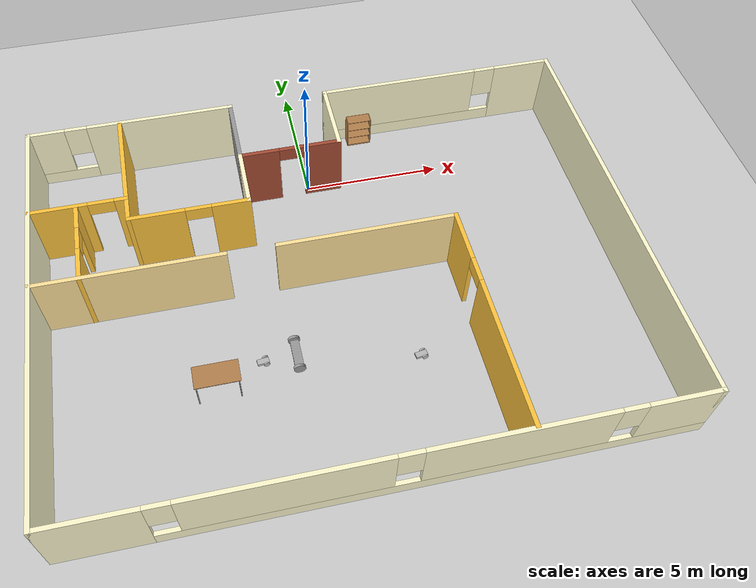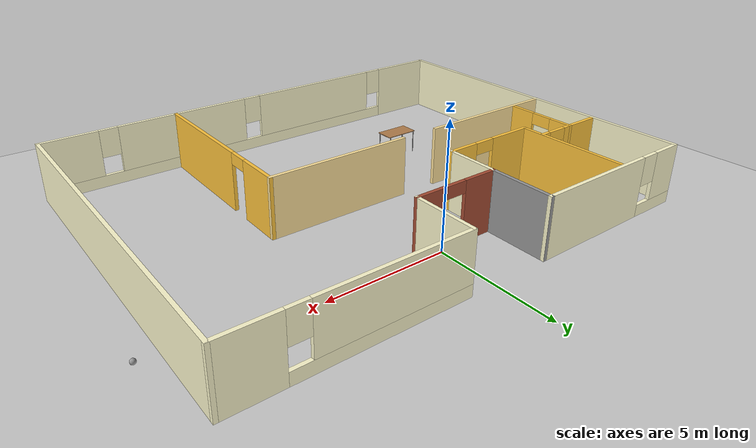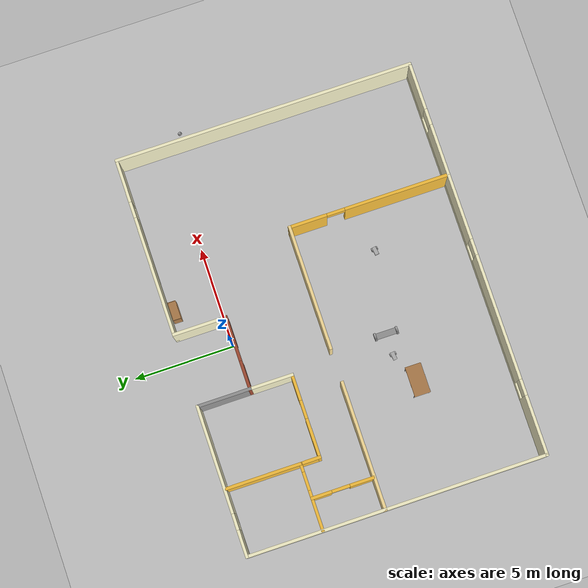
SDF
<sdf version="1.6">
 <world name="default">
  <light name="sun" type="directional">
   <pose>0 0 10 0 -0 0</pose>
   <diffuse>0.8 0.8 0.8 1</diffuse>
   <specular>0.2 0.2 0.2 1</specular>
   <attenuation>
    <range>1000</range>
    <constant>0.9</constant>
    <linear>0.01</linear>
    <quadratic>0.001</quadratic>
   </attenuation>
   <direction>-0.5 0.1 -0.9</direction>
  </light>
  <model name="ground_plane">
   <static>1</static>
   <link name="link">
    <collision name="collision">
     <geometry><plane><normal>0 0 1</normal><size>100 100</size></plane></geometry>
     <surface><friction><ode><mu>100</mu><mu2>50</mu2></ode></friction></surface>
    </collision>
    <visual name="visual">
     <cast_shadows>0</cast_shadows>
     <geometry><plane><normal>0 0 1</normal><size>100 100</size></plane></geometry>
     <material>
      <script><uri>file://media/materials/scripts/gazebo.material</uri><name>Gazebo/Grey</name></script>
     </material>
    </visual>
   </link>
  </model>
  <gravity>0 0 -9.8</gravity>
  <magnetic_field>6e-06 2.3e-05 -4.2e-05</magnetic_field>
  <atmosphere type="adiabatic"/>
  <physics name="default_physics" default="0" type="ode">
   <max_step_size>0.001</max_step_size>
   <real_time_factor>1</real_time_factor>
   <real_time_update_rate>1000</real_time_update_rate>
  </physics>
  <scene><ambient>0.4 0.4 0.4 1</ambient><background>0.7 0.7 0.7 1</background><shadows>1</shadows></scene>
  <spherical_coordinates>
   <surface_model>EARTH_WGS84</surface_model>
   <latitude_deg>0</latitude_deg>
   <longitude_deg>0</longitude_deg>
   <elevation>0</elevation>
   <heading_deg>0</heading_deg>
  </spherical_coordinates>
  <model name="myHouse">
   <pose>0.08313 -4.95881 0 0 -0 0</pose>
   <link name="Wall_10">
    <pose>-6.22482 7.425 0 0 -0 3.14159</pose>
    <visual name="Wall_10_Visual_0">
     <pose>-1.08871 0 1.25 0 -0 0</pose>
     <geometry><box><size>5.37259 0.15 2.5</size></box></geometry>
     <material>
      <script><uri>file://media/materials/scripts/gazebo.material</uri><name>Gazebo/Grey</name></script>
      <ambient>1 0.980392 0.811765 1</ambient>
     </material>
     <meta><layer>0</layer></meta>
    </visual>
    <collision name="Wall_10_Collision_0">
     <geometry><box><size>5.37259 0.15 2.5</size></box></geometry>
     <pose>-1.08871 0 1.25 0 -0 0</pose>
    </collision>
    <visual name="Wall_10_Visual_1">
     <pose>2.68629 0 0.25 0 -0 0</pose>
     <geometry><box><size>2.17741 0.15 0.5</size></box></geometry>
     <material>
      <script><uri>file://media/materials/scripts/gazebo.material</uri><name>Gazebo/Grey</name></script>
      <ambient>1 0.980392 0.811765 1</ambient>
     </material>
     <meta><layer>0</layer></meta>
    </visual>
    <collision name="Wall_10_Collision_1">
     <geometry><box><size>2.17741 0.15 0.5</size></box></geometry>
     <pose>2.68629 0 0.25 0 -0 0</pose>
    </collision>
    <visual name="Wall_10_Visual_2">
     <pose>3.08629 0 1.5 0 -0 0</pose>
     <geometry><box><size>1.37741 0.15 2</size></box></geometry>
     <material>
      <script><uri>file://media/materials/scripts/gazebo.material</uri><name>Gazebo/Grey</name></script>
      <ambient>1 0.980392 0.811765 1</ambient>
     </material>
     <meta><layer>0</layer></meta>
    </visual>
    <collision name="Wall_10_Collision_2">
     <geometry><box><size>1.37741 0.15 2</size></box></geometry>
     <pose>3.08629 0 1.5 0 -0 0</pose>
    </collision>
    <visual name="Wall_10_Visual_3">
     <pose>1.99759 0 1.9 0 -0 0</pose>
     <geometry><box><size>0.8 0.15 1.2</size></box></geometry>
     <material>
      <script><uri>file://media/materials/scripts/gazebo.material</uri><name>Gazebo/Grey</name></script>
      <ambient>1 0.980392 0.811765 1</ambient>
     </material>
     <meta><layer>0</layer></meta>
    </visual>
    <collision name="Wall_10_Collision_3">
     <geometry><box><size>0.8 0.15 1.2</size></box></geometry>
     <pose>1.99759 0 1.9 0 -0 0</pose>
    </collision>
   </link>
   <link name="Wall_12">
    <collision name="Wall_12_Collision">
     <geometry><box><size>2.25 0.15 2.5</size></box></geometry>
     <pose>0 0 1.25 0 -0 0</pose>
    </collision>
    <visual name="Wall_12_Visual">
     <pose>0 0 1.25 0 -0 0</pose>
     <geometry><box><size>2.25 0.15 2.5</size></box></geometry>
     <material>
      <script><uri>file://media/materials/scripts/gazebo.material</uri><name>Gazebo/Grey</name></script>
      <ambient>1 0.980392 0.811765 1</ambient>
     </material>
     <meta><layer>0</layer></meta>
    </visual>
    <pose>-2.52482 3.775 0 0 0 -1.5708</pose>
   </link>
   <link name="Wall_13">
    <pose>-4.57482 2.725 0 0 -0 3.14159</pose>
    <visual name="Wall_13_Visual_0">
     <pose>-1.44542 0 1.25 0 -0 0</pose>
     <geometry><box><size>1.35916 0.15 2.5</size></box></geometry>
     <material>
      <script><uri>file://media/materials/scripts/gazebo.material</uri><name>Gazebo/Grey</name></script>
      <ambient>1 0.772549 0.239216 1</ambient>
     </material>
     <meta><layer>0</layer></meta>
    </visual>
    <collision name="Wall_13_Collision_0">
     <geometry><box><size>1.35916 0.15 2.5</size></box></geometry>
     <pose>-1.44542 0 1.25 0 -0 0</pose>
    </collision>
    <visual name="Wall_13_Visual_1">
     <pose>1.12958 0 1.25 0 -0 0</pose>
     <geometry><box><size>1.99084 0.15 2.5</size></box></geometry>
     <material>
      <script><uri>file://media/materials/scripts/gazebo.material</uri><name>Gazebo/Grey</name></script>
      <ambient>1 0.772549 0.239216 1</ambient>
     </material>
     <meta><layer>0</layer></meta>
    </visual>
    <collision name="Wall_13_Collision_1">
     <geometry><box><size>1.99084 0.15 2.5</size></box></geometry>
     <pose>1.12958 0 1.25 0 -0 0</pose>
    </collision>
    <visual name="Wall_13_Visual_2">
     <pose>-0.315843 0 2.25 0 -0 0</pose>
     <geometry><box><size>0.9 0.15 0.5</size></box></geometry>
     <material>
      <script><uri>file://media/materials/scripts/gazebo.material</uri><name>Gazebo/Grey</name></script>
      <ambient>1 0.772549 0.239216 1</ambient>
     </material>
     <meta><layer>0</layer></meta>
    </visual>
    <collision name="Wall_13_Collision_2">
     <geometry><box><size>0.9 0.15 0.5</size></box></geometry>
     <pose>-0.315843 0 2.25 0 -0 0</pose>
    </collision>
   </link>
   <link name="Wall_14">
    <collision name="Wall_14_Collision">
     <geometry><box><size>4.75 0.15 2.5</size></box></geometry>
     <pose>0 0 1.25 0 -0 0</pose>
    </collision>
    <visual name="Wall_14_Visual">
     <pose>0 0 1.25 0 -0 0</pose>
     <geometry><box><size>4.75 0.15 2.5</size></box></geometry>
     <material>
      <script><uri>file://media/materials/scripts/gazebo.material</uri><name>Gazebo/Grey</name></script>
      <ambient>1 0.772549 0.239216 1</ambient>
     </material>
     <meta><layer>0</layer></meta>
    </visual>
    <pose>-6.62481 5.025 0 0 -0 1.5708</pose>
   </link>
   <link name="Wall_16">
    <pose>-8.26166 3.67479 0 0 -0 0</pose>
    <visual name="Wall_16_Visual_0">
     <pose>-0.692622 0 1.25 0 -0 0</pose>
     <geometry><box><size>2.03776 0.15 2.5</size></box></geometry>
     <material>
      <script><uri>file://media/materials/scripts/gazebo.material</uri><name>Gazebo/Grey</name></script>
      <ambient>1 0.772549 0.239216 1</ambient>
     </material>
     <meta><layer>0</layer></meta>
    </visual>
    <collision name="Wall_16_Collision_0">
     <geometry><box><size>2.03776 0.15 2.5</size></box></geometry>
     <pose>-0.692622 0 1.25 0 -0 0</pose>
    </collision>
    <visual name="Wall_16_Visual_1">
     <pose>1.46888 0 1.25 0 -0 0</pose>
     <geometry><box><size>0.485244 0.15 2.5</size></box></geometry>
     <material>
      <script><uri>file://media/materials/scripts/gazebo.material</uri><name>Gazebo/Grey</name></script>
      <ambient>1 0.772549 0.239216 1</ambient>
     </material>
     <meta><layer>0</layer></meta>
    </visual>
    <collision name="Wall_16_Collision_1">
     <geometry><box><size>0.485244 0.15 2.5</size></box></geometry>
     <pose>1.46888 0 1.25 0 -0 0</pose>
    </collision>
    <visual name="Wall_16_Visual_2">
     <pose>0.776256 0 2.25 0 -0 0</pose>
     <geometry><box><size>0.9 0.15 0.5</size></box></geometry>
     <material>
      <script><uri>file://media/materials/scripts/gazebo.material</uri><name>Gazebo/Grey</name></script>
      <ambient>1 0.772549 0.239216 1</ambient>
     </material>
     <meta><layer>0</layer></meta>
    </visual>
    <collision name="Wall_16_Collision_2">
     <geometry><box><size>0.9 0.15 0.5</size></box></geometry>
     <pose>0.776256 0 2.25 0 -0 0</pose>
    </collision>
   </link>
   <link name="Wall_21">
    <pose>4.20181 -3.38793 0 0 0 -1.5708</pose>
    <visual name="Wall_21_Visual_0">
     <pose>-3.08247 0 1.25 0 -0 0</pose>
     <geometry><box><size>1.94451 0.15 2.5</size></box></geometry>
     <material>
      <script><uri>file://media/materials/scripts/gazebo.material</uri><name>Gazebo/Grey</name></script>
      <ambient>1 0.772549 0.239216 1</ambient>
     </material>
     <meta><layer>0</layer></meta>
    </visual>
    <collision name="Wall_21_Collision_0">
     <geometry><box><size>1.94451 0.15 2.5</size></box></geometry>
     <pose>-3.08247 0 1.25 0 -0 0</pose>
    </collision>
    <visual name="Wall_21_Visual_1">
     <pose>1.42226 0 1.25 0 -0 0</pose>
     <geometry><box><size>5.26493 0.15 2.5</size></box></geometry>
     <material>
      <script><uri>file://media/materials/scripts/gazebo.material</uri><name>Gazebo/Grey</name></script>
      <ambient>1 0.772549 0.239216 1</ambient>
     </material>
     <meta><layer>0</layer></meta>
    </visual>
    <collision name="Wall_21_Collision_1">
     <geometry><box><size>5.26493 0.15 2.5</size></box></geometry>
     <pose>1.42226 0 1.25 0 -0 0</pose>
    </collision>
    <visual name="Wall_21_Visual_2">
     <pose>-1.66021 0 2.25 0 -0 0</pose>
     <geometry><box><size>0.9 0.15 0.5</size></box></geometry>
     <material>
      <script><uri>file://media/materials/scripts/gazebo.material</uri><name>Gazebo/Grey</name></script>
      <ambient>1 0.772549 0.239216 1</ambient>
     </material>
     <meta><layer>0</layer></meta>
    </visual>
    <collision name="Wall_21_Collision_2">
     <geometry><box><size>0.9 0.15 0.5</size></box></geometry>
     <pose>-1.66021 0 2.25 0 -0 0</pose>
    </collision>
   </link>
   <link name="Wall_23">
    <pose>-8.33016 2.13129 0 0 0 -1.5708</pose>
    <visual name="Wall_23_Visual_0">
     <pose>-1.09422 0 1.25 0 -0 0</pose>
     <geometry><box><size>1.0487 0.15 2.5</size></box></geometry>
     <material>
      <script><uri>file://media/materials/scripts/gazebo.material</uri><name>Gazebo/Grey</name></script>
      <ambient>1 0.772549 0.239216 1</ambient>
     </material>
     <meta><layer>0</layer></meta>
    </visual>
    <collision name="Wall_23_Collision_0">
     <geometry><box><size>1.0487 0.15 2.5</size></box></geometry>
     <pose>-1.09422 0 1.25 0 -0 0</pose>
    </collision>
    <visual name="Wall_23_Visual_1">
     <pose>0.974348 0 1.25 0 -0 0</pose>
     <geometry><box><size>1.28844 0.15 2.5</size></box></geometry>
     <material>
      <script><uri>file://media/materials/scripts/gazebo.material</uri><name>Gazebo/Grey</name></script>
      <ambient>1 0.772549 0.239216 1</ambient>
     </material>
     <meta><layer>0</layer></meta>
    </visual>
    <collision name="Wall_23_Collision_1">
     <geometry><box><size>1.28844 0.15 2.5</size></box></geometry>
     <pose>0.974348 0 1.25 0 -0 0</pose>
    </collision>
    <visual name="Wall_23_Visual_2">
     <pose>-0.119873 0 2.25 0 -0 0</pose>
     <geometry><box><size>0.9 0.15 0.5</size></box></geometry>
     <material>
      <script><uri>file://media/materials/scripts/gazebo.material</uri><name>Gazebo/Grey</name></script>
      <ambient>1 0.772549 0.239216 1</ambient>
     </material>
     <meta><layer>0</layer></meta>
    </visual>
    <collision name="Wall_23_Collision_2">
     <geometry><box><size>0.9 0.15 0.5</size></box></geometry>
     <pose>-0.119873 0 2.25 0 -0 0</pose>
    </collision>
   </link>
   <link name="Wall_25">
    <collision name="Wall_25_Collision">
     <geometry><box><size>6.43405 0.15 2.5</size></box></geometry>
     <pose>0 0 1.25 0 -0 0</pose>
    </collision>
    <visual name="Wall_25_Visual">
     <pose>0 0 1.25 0 -0 0</pose>
     <geometry><box><size>6.43405 0.15 2.5</size></box></geometry>
     <material>
      <script><uri>file://media/materials/scripts/gazebo.material</uri><name>Gazebo/Grey</name></script>
      <ambient>1 0.890196 0.607843 1</ambient>
     </material>
     <meta><layer>0</layer></meta>
    </visual>
    <pose>-6.78316 0.591794 0 0 -0 0</pose>
   </link>
   <link name="Wall_27">
    <collision name="Wall_27_Collision">
     <geometry><box><size>6.25 0.15 2.5</size></box></geometry>
     <pose>0 0 1.25 0 -0 0</pose>
    </collision>
    <visual name="Wall_27_Visual">
     <pose>0 0 1.25 0 -0 0</pose>
     <geometry><box><size>6.25 0.15 2.5</size></box></geometry>
     <material>
      <script><uri>file://media/materials/scripts/gazebo.material</uri><name>Gazebo/Grey</name></script>
      <ambient>1 0.890196 0.607843 1</ambient>
     </material>
     <meta><layer>0</layer></meta>
    </visual>
    <pose>1.15184 0.591794 0 0 -0 3.14159</pose>
   </link>
   <link name="Wall_3">
    <collision name="Wall_3_Collision">
     <geometry><box><size>15 0.15 2.5</size></box></geometry>
     <pose>0 0 1.25 0 -0 0</pose>
    </collision>
    <visual name="Wall_3_Visual">
     <pose>0 0 1.25 0 -0 0</pose>
     <geometry><box><size>15 0.15 2.5</size></box></geometry>
     <material>
      <script><uri>file://media/materials/scripts/gazebo.material</uri><name>Gazebo/Grey</name></script>
      <ambient>1 0.980392 0.811765 1</ambient>
     </material>
     <meta><layer>0</layer></meta>
    </visual>
    <pose>-9.92482 0 0 0 0 -1.5708</pose>
   </link>
   <link name="Wall_4">
    <pose>0.000185 -7.425 0 0 -0 0</pose>
    <visual name="Wall_4_Visual_0">
     <pose>-8.48669 0 1.25 0 -0 0</pose>
     <geometry><box><size>3.02663 0.15 2.5</size></box></geometry>
     <material>
      <script><uri>file://media/materials/scripts/gazebo.material</uri><name>Gazebo/Grey</name></script>
      <ambient>1 0.980392 0.811765 1</ambient>
     </material>
     <meta><layer>0</layer></meta>
    </visual>
    <collision name="Wall_4_Collision_0">
     <geometry><box><size>3.02663 0.15 2.5</size></box></geometry>
     <pose>-8.48669 0 1.25 0 -0 0</pose>
    </collision>
    <visual name="Wall_4_Visual_1">
     <pose>1.51331 0 0.25 0 -0 0</pose>
     <geometry><box><size>16.9734 0.15 0.5</size></box></geometry>
     <material>
      <script><uri>file://media/materials/scripts/gazebo.material</uri><name>Gazebo/Grey</name></script>
      <ambient>1 0.980392 0.811765 1</ambient>
     </material>
     <meta><layer>0</layer></meta>
    </visual>
    <collision name="Wall_4_Collision_1">
     <geometry><box><size>16.9734 0.15 0.5</size></box></geometry>
     <pose>1.51331 0 0.25 0 -0 0</pose>
    </collision>
    <visual name="Wall_4_Visual_2">
     <pose>-3.03555 0 1.5 0 -0 0</pose>
     <geometry><box><size>6.27565 0.15 2</size></box></geometry>
     <material>
      <script><uri>file://media/materials/scripts/gazebo.material</uri><name>Gazebo/Grey</name></script>
      <ambient>1 0.980392 0.811765 1</ambient>
     </material>
     <meta><layer>0</layer></meta>
    </visual>
    <collision name="Wall_4_Collision_2">
     <geometry><box><size>6.27565 0.15 2</size></box></geometry>
     <pose>-3.03555 0 1.5 0 -0 0</pose>
    </collision>
    <visual name="Wall_4_Visual_3">
     <pose>3.8406 0 1.5 0 -0 0</pose>
     <geometry><box><size>5.87665 0.15 2</size></box></geometry>
     <material>
      <script><uri>file://media/materials/scripts/gazebo.material</uri><name>Gazebo/Grey</name></script>
      <ambient>1 0.980392 0.811765 1</ambient>
     </material>
     <meta><layer>0</layer></meta>
    </visual>
    <collision name="Wall_4_Collision_3">
     <geometry><box><size>5.87665 0.15 2</size></box></geometry>
     <pose>3.8406 0 1.5 0 -0 0</pose>
    </collision>
    <visual name="Wall_4_Visual_4">
     <pose>8.78946 0 1.5 0 -0 0</pose>
     <geometry><box><size>2.42107 0.15 2</size></box></geometry>
     <material>
      <script><uri>file://media/materials/scripts/gazebo.material</uri><name>Gazebo/Grey</name></script>
      <ambient>1 0.980392 0.811765 1</ambient>
     </material>
     <meta><layer>0</layer></meta>
    </visual>
    <collision name="Wall_4_Collision_4">
     <geometry><box><size>2.42107 0.15 2</size></box></geometry>
     <pose>8.78946 0 1.5 0 -0 0</pose>
    </collision>
    <visual name="Wall_4_Visual_5">
     <pose>-6.57338 0 1.9 0 -0 0</pose>
     <geometry><box><size>0.8 0.15 1.2</size></box></geometry>
     <material>
      <script><uri>file://media/materials/scripts/gazebo.material</uri><name>Gazebo/Grey</name></script>
      <ambient>1 0.980392 0.811765 1</ambient>
     </material>
     <meta><layer>0</layer></meta>
    </visual>
    <collision name="Wall_4_Collision_5">
     <geometry><box><size>0.8 0.15 1.2</size></box></geometry>
     <pose>-6.57338 0 1.9 0 -0 0</pose>
    </collision>
    <visual name="Wall_4_Visual_6">
     <pose>0.502278 0 1.9 0 -0 0</pose>
     <geometry><box><size>0.8 0.15 1.2</size></box></geometry>
     <material>
      <script><uri>file://media/materials/scripts/gazebo.material</uri><name>Gazebo/Grey</name></script>
      <ambient>1 0.980392 0.811765 1</ambient>
     </material>
     <meta><layer>0</layer></meta>
    </visual>
    <collision name="Wall_4_Collision_6">
     <geometry><box><size>0.8 0.15 1.2</size></box></geometry>
     <pose>0.502278 0 1.9 0 -0 0</pose>
    </collision>
    <visual name="Wall_4_Visual_7">
     <pose>7.17893 0 1.9 0 -0 0</pose>
     <geometry><box><size>0.8 0.15 1.2</size></box></geometry>
     <material>
      <script><uri>file://media/materials/scripts/gazebo.material</uri><name>Gazebo/Grey</name></script>
      <ambient>1 0.980392 0.811765 1</ambient>
     </material>
     <meta><layer>0</layer></meta>
    </visual>
    <collision name="Wall_4_Collision_7">
     <geometry><box><size>0.8 0.15 1.2</size></box></geometry>
     <pose>7.17893 0 1.9 0 -0 0</pose>
    </collision>
   </link>
   <link name="Wall_5">
    <collision name="Wall_5_Collision">
     <geometry><box><size>15 0.15 2.5</size></box></geometry>
     <pose>0 0 1.25 0 -0 0</pose>
    </collision>
    <visual name="Wall_5_Visual">
     <pose>0 0 1.25 0 -0 0</pose>
     <geometry><box><size>15 0.15 2.5</size></box></geometry>
     <material>
      <script><uri>file://media/materials/scripts/gazebo.material</uri><name>Gazebo/Grey</name></script>
      <ambient>1 0.980392 0.811765 1</ambient>
     </material>
     <meta><layer>0</layer></meta>
    </visual>
    <pose>9.92519 0 0 0 -0 1.5708</pose>
   </link>
   <link name="Wall_6">
    <pose>5.50019 7.425 0 0 -0 3.14159</pose>
    <visual name="Wall_6_Visual_0">
     <pose>-3.39587 0 1.25 0 -0 0</pose>
     <geometry><box><size>2.20827 0.15 2.5</size></box></geometry>
     <material>
      <script><uri>file://media/materials/scripts/gazebo.material</uri><name>Gazebo/Grey</name></script>
      <ambient>1 0.980392 0.811765 1</ambient>
     </material>
     <meta><layer>0</layer></meta>
    </visual>
    <collision name="Wall_6_Collision_0">
     <geometry><box><size>2.20827 0.15 2.5</size></box></geometry>
     <pose>-3.39587 0 1.25 0 -0 0</pose>
    </collision>
    <visual name="Wall_6_Visual_1">
     <pose>1.10414 0 0.25 0 -0 0</pose>
     <geometry><box><size>6.79173 0.15 0.5</size></box></geometry>
     <material>
      <script><uri>file://media/materials/scripts/gazebo.material</uri><name>Gazebo/Grey</name></script>
      <ambient>1 0.980392 0.811765 1</ambient>
     </material>
     <meta><layer>0</layer></meta>
    </visual>
    <collision name="Wall_6_Collision_1">
     <geometry><box><size>6.79173 0.15 0.5</size></box></geometry>
     <pose>1.10414 0 0.25 0 -0 0</pose>
    </collision>
    <visual name="Wall_6_Visual_2">
     <pose>1.50413 0 1.5 0 -0 0</pose>
     <geometry><box><size>5.99173 0.15 2</size></box></geometry>
     <material>
      <script><uri>file://media/materials/scripts/gazebo.material</uri><name>Gazebo/Grey</name></script>
      <ambient>1 0.980392 0.811765 1</ambient>
     </material>
     <meta><layer>0</layer></meta>
    </visual>
    <collision name="Wall_6_Collision_2">
     <geometry><box><size>5.99173 0.15 2</size></box></geometry>
     <pose>1.50413 0 1.5 0 -0 0</pose>
    </collision>
    <visual name="Wall_6_Visual_3">
     <pose>-1.89173 0 1.9 0 -0 0</pose>
     <geometry><box><size>0.8 0.15 1.2</size></box></geometry>
     <material>
      <script><uri>file://media/materials/scripts/gazebo.material</uri><name>Gazebo/Grey</name></script>
      <ambient>1 0.980392 0.811765 1</ambient>
     </material>
     <meta><layer>0</layer></meta>
    </visual>
    <collision name="Wall_6_Collision_3">
     <geometry><box><size>0.8 0.15 1.2</size></box></geometry>
     <pose>-1.89173 0 1.9 0 -0 0</pose>
    </collision>
   </link>
   <link name="Wall_7">
    <collision name="Wall_7_Collision">
     <geometry><box><size>2.75 0.15 2.5</size></box></geometry>
     <pose>0 0 1.25 0 -0 0</pose>
    </collision>
    <visual name="Wall_7_Visual">
     <pose>0 0 1.25 0 -0 0</pose>
     <geometry><box><size>2.75 0.15 2.5</size></box></geometry>
     <material>
      <script><uri>file://media/materials/scripts/gazebo.material</uri><name>Gazebo/Grey</name></script>
      <ambient>1 0.980392 0.811765 1</ambient>
     </material>
     <meta><layer>0</layer></meta>
    </visual>
    <pose>1.07519 6.125 0 0 0 -1.5708</pose>
   </link>
   <link name="Wall_8">
    <pose>-0.724815 4.825 0 0 -0 3.14159</pose>
    <visual name="Wall_8_Visual_0">
     <pose>-1.19094 0 1.25 0 -0 0</pose>
     <geometry><box><size>1.36813 0.15 2.5</size></box></geometry>
     <material>
      <script><uri>file://media/materials/scripts/gazebo.material</uri><name>Gazebo/Bricks</name></script>
      <ambient>1 1 1 1</ambient>
     </material>
     <meta><layer>0</layer></meta>
    </visual>
    <collision name="Wall_8_Collision_0">
     <geometry><box><size>1.36813 0.15 2.5</size></box></geometry>
     <pose>-1.19094 0 1.25 0 -0 0</pose>
    </collision>
    <visual name="Wall_8_Visual_1">
     <pose>1.13407 0 1.25 0 -0 0</pose>
     <geometry><box><size>1.48187 0.15 2.5</size></box></geometry>
     <material>
      <script><uri>file://media/materials/scripts/gazebo.material</uri><name>Gazebo/Bricks</name></script>
      <ambient>1 1 1 1</ambient>
     </material>
     <meta><layer>0</layer></meta>
    </visual>
    <collision name="Wall_8_Collision_1">
     <geometry><box><size>1.48187 0.15 2.5</size></box></geometry>
     <pose>1.13407 0 1.25 0 -0 0</pose>
    </collision>
    <visual name="Wall_8_Visual_2">
     <pose>-0.056869 0 2.25 0 -0 0</pose>
     <geometry><box><size>0.9 0.15 0.5</size></box></geometry>
     <material>
      <script><uri>file://media/materials/scripts/gazebo.material</uri><name>Gazebo/Bricks</name></script>
      <ambient>1 1 1 1</ambient>
     </material>
     <meta><layer>0</layer></meta>
    </visual>
    <collision name="Wall_8_Collision_2">
     <geometry><box><size>0.9 0.15 0.5</size></box></geometry>
     <pose>-0.056869 0 2.25 0 -0 0</pose>
    </collision>
   </link>
   <link name="Wall_9">
    <collision name="Wall_9_Collision">
     <geometry><box><size>2.75 0.15 2.5</size></box></geometry>
     <pose>0 0 1.25 0 -0 0</pose>
    </collision>
    <visual name="Wall_9_Visual">
     <pose>0 0 1.25 0 -0 0</pose>
     <geometry><box><size>2.75 0.15 2.5</size></box></geometry>
     <material>
      <script><uri>file://media/materials/scripts/gazebo.material</uri><name>Gazebo/Grey</name></script>
      <ambient>1 1 1 1</ambient>
     </material>
     <meta><layer>0</layer></meta>
    </visual>
    <pose>-2.52482 6.125 0 0 -0 1.5708</pose>
   </link>
   <static>1</static>
  </model>
  <model name="myMobileRobot">
   <static>0</static>
   <link name="chassis">
    <pose>0 0 0.1 0 -0 0</pose>
    <collision name="collision"><geometry><box><size>0.4 0.2 0.1</size></box></geometry></collision>
    <visual name="visual"><geometry><box><size>0.4 0.2 0.1</size></box></geometry></visual>
    <collision name="caster_collision">
     <pose>-0.15 0 -0.05 0 -0 0</pose>
     <geometry><sphere><radius>0.05</radius></sphere></geometry>
     <surface><friction><ode><mu>0</mu><mu2>0</mu2><slip1>1</slip1><slip2>1</slip2></ode></friction></surface>
    </collision>
    <visual name="caster_visual">
     <pose>-0.15 0 -0.05 0 -0 0</pose>
     <geometry><sphere><radius>0.05</radius></sphere></geometry>
    </visual>
    <inertial>
     <inertia><ixx>1</ixx><ixy>0</ixy><ixz>0</ixz><iyy>1</iyy><iyz>0</iyz><izz>1</izz></inertia>
     <mass>1</mass>
    </inertial>
   </link>
   <link name="left_wheel">
    <pose>0.1 0.13 0.1 -0 1.5707 1.5707</pose>
    <collision name="collision">
     <geometry><cylinder><radius>0.1</radius><length>0.05</length></cylinder></geometry>
    </collision>
    <visual name="visual">
     <geometry><cylinder><radius>0.1</radius><length>0.05</length></cylinder></geometry>
    </visual>
    <inertial>
     <inertia><ixx>1</ixx><ixy>0</ixy><ixz>0</ixz><iyy>1</iyy><iyz>0</iyz><izz>1</izz></inertia>
     <mass>1</mass>
    </inertial>
   </link>
   <link name="right_wheel">
    <pose>0.1 -0.13 0.1 -0 1.5707 1.5707</pose>
    <collision name="collision">
     <geometry><cylinder><radius>0.1</radius><length>0.05</length></cylinder></geometry>
    </collision>
    <visual name="visual">
     <geometry><cylinder><radius>0.1</radius><length>0.05</length></cylinder></geometry>
    </visual>
    <inertial>
     <inertia><ixx>1</ixx><ixy>0</ixy><ixz>0</ixz><iyy>1</iyy><iyz>0</iyz><izz>1</izz></inertia>
     <mass>1</mass>
    </inertial>
   </link>
   <joint name="left_wheel_hinge" type="revolute">
    <pose>0 0 -0.03 0 -0 0</pose>
    <child>left_wheel</child>
    <parent>chassis</parent>
    <axis>
     <xyz>0 1 0</xyz>
     <use_parent_model_frame>1</use_parent_model_frame>
     <limit><lower>-1e+16</lower><upper>1e+16</upper></limit>
     <dynamics><spring_reference>0</spring_reference><spring_stiffness>0</spring_stiffness></dynamics>
    </axis>
   </joint>
   <joint name="right_wheel_hinge" type="revolute">
    <pose>0 0 0.03 0 -0 0</pose>
    <child>right_wheel</child>
    <parent>chassis</parent>
    <axis>
     <xyz>0 1 0</xyz>
     <use_parent_model_frame>1</use_parent_model_frame>
     <limit><lower>-1e+16</lower><upper>1e+16</upper></limit>
     <dynamics><spring_reference>0</spring_reference><spring_stiffness>0</spring_stiffness></dynamics>
    </axis>
   </joint>
   <pose>-2.92531 -7.22835 2e-06 4.7e-05 -0 0.103448</pose>
  </model>
  <model name="table">
   <static>1</static>
   <link name="link">
    <collision name="surface">
     <pose>0 0 1 0 -0 0</pose>
     <geometry><box><size>1.5 0.8 0.03</size></box></geometry>
     <surface><friction><ode><mu>0.6</mu><mu2>0.6</mu2></ode></friction></surface>
    </collision>
    <visual name="visual1">
     <pose>0 0 1 0 -0 0</pose>
     <geometry><box><size>1.5 0.8 0.03</size></box></geometry>
     <material>
      <script><uri>file://media/materials/scripts/gazebo.material</uri><name>Gazebo/Wood</name></script>
     </material>
    </visual>
    <collision name="front_left_leg">
     <pose>0.68 0.38 0.5 0 -0 0</pose>
     <geometry><cylinder><radius>0.02</radius><length>1</length></cylinder></geometry>
    </collision>
    <visual name="front_left_leg">
     <pose>0.68 0.38 0.5 0 -0 0</pose>
     <geometry><cylinder><radius>0.02</radius><length>1</length></cylinder></geometry>
     <material>
      <script><uri>file://media/materials/scripts/gazebo.material</uri><name>Gazebo/Grey</name></script>
     </material>
    </visual>
    <collision name="front_right_leg">
     <pose>0.68 -0.38 0.5 0 -0 0</pose>
     <geometry><cylinder><radius>0.02</radius><length>1</length></cylinder></geometry>
    </collision>
    <visual name="front_right_leg">
     <pose>0.68 -0.38 0.5 0 -0 0</pose>
     <geometry><cylinder><radius>0.02</radius><length>1</length></cylinder></geometry>
     <material>
      <script><uri>file://media/materials/scripts/gazebo.material</uri><name>Gazebo/Grey</name></script>
     </material>
    </visual>
    <collision name="back_right_leg">
     <pose>-0.68 -0.38 0.5 0 -0 0</pose>
     <geometry><cylinder><radius>0.02</radius><length>1</length></cylinder></geometry>
    </collision>
    <visual name="back_right_leg">
     <pose>-0.68 -0.38 0.5 0 -0 0</pose>
     <geometry><cylinder><radius>0.02</radius><length>1</length></cylinder></geometry>
     <material>
      <script><uri>file://media/materials/scripts/gazebo.material</uri><name>Gazebo/Grey</name></script>
     </material>
    </visual>
    <collision name="back_left_leg">
     <pose>-0.68 0.38 0.5 0 -0 0</pose>
     <geometry><cylinder><radius>0.02</radius><length>1</length></cylinder></geometry>
    </collision>
    <visual name="back_left_leg">
     <pose>-0.68 0.38 0.5 0 -0 0</pose>
     <geometry><cylinder><radius>0.02</radius><length>1</length></cylinder></geometry>
     <material>
      <script><uri>file://media/materials/scripts/gazebo.material</uri><name>Gazebo/Grey</name></script>
     </material>
    </visual>
   </link>
   <pose>-4.46298 -7.88837 0 0 -0 0</pose>
  </model>
  <model name="bookshelf">
   <static>1</static>
   <link name="link">
    <inertial><mass>1</mass></inertial>
    <collision name="back">
     <pose>0 0.005 0.6 0 -0 0</pose>
     <geometry><box><size>0.9 0.01 1.2</size></box></geometry>
    </collision>
    <visual name="visual1">
     <pose>0 0.005 0.6 0 -0 0</pose>
     <geometry><box><size>0.9 0.01 1.2</size></box></geometry>
     <material>
      <script><uri>file://media/materials/scripts/gazebo.material</uri><name>Gazebo/Wood</name></script>
     </material>
    </visual>
    <collision name="left_side">
     <pose>0.45 -0.195 0.6 0 -0 0</pose>
     <geometry><box><size>0.02 0.4 1.2</size></box></geometry>
    </collision>
    <visual name="visual2">
     <pose>0.45 -0.195 0.6 0 -0 0</pose>
     <geometry><box><size>0.02 0.4 1.2</size></box></geometry>
     <material>
      <script><uri>file://media/materials/scripts/gazebo.material</uri><name>Gazebo/Wood</name></script>
     </material>
    </visual>
    <collision name="right_side">
     <pose>-0.45 -0.195 0.6 0 -0 0</pose>
     <geometry><box><size>0.02 0.4 1.2</size></box></geometry>
    </collision>
    <visual name="visual3">
     <pose>-0.45 -0.195 0.6 0 -0 0</pose>
     <geometry><box><size>0.02 0.4 1.2</size></box></geometry>
     <material>
      <script><uri>file://media/materials/scripts/gazebo.material</uri><name>Gazebo/Wood</name></script>
     </material>
    </visual>
    <collision name="bottom">
     <pose>0 -0.195 0.03 0 -0 0</pose>
     <geometry><box><size>0.88 0.4 0.06</size></box></geometry>
    </collision>
    <visual name="visual4">
     <pose>0 -0.195 0.03 0 -0 0</pose>
     <geometry><box><size>0.88 0.4 0.06</size></box></geometry>
     <material>
      <script><uri>file://media/materials/scripts/gazebo.material</uri><name>Gazebo/Wood</name></script>
     </material>
    </visual>
    <collision name="top">
     <pose>0 -0.195 1.19 0 -0 0</pose>
     <geometry><box><size>0.88 0.4 0.02</size></box></geometry>
    </collision>
    <visual name="visual5">
     <pose>0 -0.195 1.19 0 -0 0</pose>
     <geometry><box><size>0.88 0.4 0.02</size></box></geometry>
     <material>
      <script><uri>file://media/materials/scripts/gazebo.material</uri><name>Gazebo/Wood</name></script>
     </material>
    </visual>
    <collision name="low_shelf">
     <pose>0 -0.195 0.43 0 -0 0</pose>
     <geometry><box><size>0.88 0.4 0.02</size></box></geometry>
    </collision>
    <visual name="visual6">
     <pose>0 -0.195 0.43 0 -0 0</pose>
     <geometry><box><size>0.88 0.4 0.02</size></box></geometry>
     <material>
      <script><uri>file://media/materials/scripts/gazebo.material</uri><name>Gazebo/Wood</name></script>
     </material>
    </visual>
    <collision name="high_shelf">
     <pose>0 -0.195 0.8 0 -0 0</pose>
     <geometry><box><size>0.88 0.4 0.02</size></box></geometry>
    </collision>
    <visual name="visual7">
     <pose>0 -0.195 0.8 0 -0 0</pose>
     <geometry><box><size>0.88 0.4 0.02</size></box></geometry>
     <material>
      <script><uri>file://media/materials/scripts/gazebo.material</uri><name>Gazebo/Wood</name></script>
     </material>
    </visual>
   </link>
   <pose>2.42388 2.33127 0 0 -0 0</pose>
  </model>
  <model name="myMobileRobot_0">
   <static>0</static>
   <link name="chassis">
    <pose>0 0 0.1 0 -0 0</pose>
    <collision name="collision"><geometry><box><size>0.4 0.2 0.1</size></box></geometry></collision>
    <visual name="visual"><geometry><box><size>0.4 0.2 0.1</size></box></geometry></visual>
    <collision name="caster_collision">
     <pose>-0.15 0 -0.05 0 -0 0</pose>
     <geometry><sphere><radius>0.05</radius></sphere></geometry>
     <surface><friction><ode><mu>0</mu><mu2>0</mu2><slip1>1</slip1><slip2>1</slip2></ode></friction></surface>
    </collision>
    <visual name="caster_visual">
     <pose>-0.15 0 -0.05 0 -0 0</pose>
     <geometry><sphere><radius>0.05</radius></sphere></geometry>
    </visual>
    <inertial>
     <inertia><ixx>1</ixx><ixy>0</ixy><ixz>0</ixz><iyy>1</iyy><iyz>0</iyz><izz>1</izz></inertia>
     <mass>1</mass>
    </inertial>
   </link>
   <link name="left_wheel">
    <pose>0.1 0.13 0.1 -0 1.5707 1.5707</pose>
    <collision name="collision">
     <geometry><cylinder><radius>0.1</radius><length>0.05</length></cylinder></geometry>
    </collision>
    <visual name="visual">
     <geometry><cylinder><radius>0.1</radius><length>0.05</length></cylinder></geometry>
    </visual>
    <inertial>
     <inertia><ixx>1</ixx><ixy>0</ixy><ixz>0</ixz><iyy>1</iyy><iyz>0</iyz><izz>1</izz></inertia>
     <mass>1</mass>
    </inertial>
   </link>
   <link name="right_wheel">
    <pose>0.1 -0.13 0.1 -0 1.5707 1.5707</pose>
    <collision name="collision">
     <geometry><cylinder><radius>0.1</radius><length>0.05</length></cylinder></geometry>
    </collision>
    <visual name="visual">
     <geometry><cylinder><radius>0.1</radius><length>0.05</length></cylinder></geometry>
    </visual>
    <inertial>
     <inertia><ixx>1</ixx><ixy>0</ixy><ixz>0</ixz><iyy>1</iyy><iyz>0</iyz><izz>1</izz></inertia>
     <mass>1</mass>
    </inertial>
   </link>
   <joint name="left_wheel_hinge" type="revolute">
    <pose>0 0 -0.03 0 -0 0</pose>
    <child>left_wheel</child>
    <parent>chassis</parent>
    <axis>
     <xyz>0 1 0</xyz>
     <use_parent_model_frame>1</use_parent_model_frame>
     <limit><lower>-1e+16</lower><upper>1e+16</upper></limit>
     <dynamics><spring_reference>0</spring_reference><spring_stiffness>0</spring_stiffness></dynamics>
    </axis>
   </joint>
   <joint name="right_wheel_hinge" type="revolute">
    <pose>0 0 0.03 0 -0 0</pose>
    <child>right_wheel</child>
    <parent>chassis</parent>
    <axis>
     <xyz>0 1 0</xyz>
     <use_parent_model_frame>1</use_parent_model_frame>
     <limit><lower>-1e+16</lower><upper>1e+16</upper></limit>
     <dynamics><spring_reference>0</spring_reference><spring_stiffness>0</spring_stiffness></dynamics>
    </axis>
   </joint>
   <pose>2.24138 -8.04926 1e-06 5.1e-05 -1e-05 0.13448</pose>
  </model>
  <model name="robot">
   <link name="link">
    <inertial>
     <mass>1</mass>
     <inertia>
      <ixx>0.166667</ixx>
      <ixy>0</ixy>
      <ixz>0</ixz>
      <iyy>0.166667</iyy>
      <iyz>0</iyz>
      <izz>0.166667</izz>
     </inertia>
    </inertial>
    <pose>0 -0 0.2 0 -0 0</pose>
    <visual name="visual">
     <geometry><box><size>0.3 1 0.1</size></box></geometry>
     <material>
      <script><name>Gazebo/Grey</name><uri>file://media/materials/scripts/gazebo.material</uri></script>
      <shader type="pixel"><normal_map>__default__</normal_map></shader>
      <ambient>0.3 0.3 0.3 1</ambient>
      <diffuse>0.7 0.7 0.7 1</diffuse>
      <specular>0.01 0.01 0.01 1</specular>
      <emissive>0 0 0 1</emissive>
     </material>
    </visual>
    <collision name="collision">
     <geometry><box><size>0.3 1 0.1</size></box></geometry>
     <surface>
      <friction>
       <ode><mu>1</mu><mu2>1</mu2><fdir1>0 0 0</fdir1><slip1>0</slip1><slip2>0</slip2></ode>
       <torsional>
        <coefficient>1</coefficient>
        <patch_radius>0</patch_radius>
        <surface_radius>0</surface_radius>
        <use_patch_radius>1</use_patch_radius>
        <ode><slip>0</slip></ode>
       </torsional>
      </friction>
      <bounce><restitution_coefficient>0</restitution_coefficient><threshold>1e+06</threshold></bounce>
      <contact>
       <collide_without_contact>0</collide_without_contact>
       <collide_without_contact_bitmask>1</collide_without_contact_bitmask>
       <collide_bitmask>1</collide_bitmask>
       <ode>
        <soft_cfm>0</soft_cfm>
        <soft_erp>0.2</soft_erp>
        <kp>1e+13</kp>
        <kd>1</kd>
        <max_vel>0.01</max_vel>
        <min_depth>0</min_depth>
       </ode>
       <bullet>
        <split_impulse>1</split_impulse>
        <split_impulse_penetration_threshold>-0.01</split_impulse_penetration_threshold>
        <soft_cfm>0</soft_cfm>
        <soft_erp>0.2</soft_erp>
        <kp>1e+13</kp>
        <kd>1</kd>
       </bullet>
      </contact>
     </surface>
    </collision>
   </link>
   <link name="link_0">
    <inertial>
     <mass>1</mass>
     <inertia><ixx>0.145833</ixx><ixy>0</ixy><ixz>0</ixz><iyy>0.145833</iyy><iyz>0</iyz><izz>0.125</izz></inertia>
    </inertial>
    <pose>-0 -0.550019 0.2 1.5707 -0 0</pose>
    <visual name="visual">
     <geometry><cylinder><radius>0.2</radius><length>0.1</length></cylinder></geometry>
     <material>
      <lighting>1</lighting>
      <script><uri>file://media/materials/scripts/gazebo.material</uri><name>Gazebo/Grey</name></script>
      <shader type="pixel"><normal_map>__default__</normal_map></shader>
      <ambient>0.3 0.3 0.3 1</ambient>
      <diffuse>0.7 0.7 0.7 1</diffuse>
      <specular>0.01 0.01 0.01 1</specular>
      <emissive>0 0 0 1</emissive>
     </material>
    </visual>
    <collision name="collision">
     <geometry><cylinder><radius>0.2</radius><length>0.1</length></cylinder></geometry>
     <surface>
      <friction>
       <ode><mu>1</mu><mu2>1</mu2><fdir1>0 0 0</fdir1><slip1>0</slip1><slip2>0</slip2></ode>
       <torsional>
        <coefficient>1</coefficient>
        <patch_radius>0</patch_radius>
        <surface_radius>0</surface_radius>
        <use_patch_radius>1</use_patch_radius>
        <ode><slip>0</slip></ode>
       </torsional>
      </friction>
      <bounce><restitution_coefficient>0</restitution_coefficient><threshold>1e+06</threshold></bounce>
      <contact>
       <collide_without_contact>0</collide_without_contact>
       <collide_without_contact_bitmask>1</collide_without_contact_bitmask>
       <collide_bitmask>1</collide_bitmask>
       <ode>
        <soft_cfm>0</soft_cfm>
        <soft_erp>0.2</soft_erp>
        <kp>1e+13</kp>
        <kd>1</kd>
        <max_vel>0.01</max_vel>
        <min_depth>0</min_depth>
       </ode>
       <bullet>
        <split_impulse>1</split_impulse>
        <split_impulse_penetration_threshold>-0.01</split_impulse_penetration_threshold>
        <soft_cfm>0</soft_cfm>
        <soft_erp>0.2</soft_erp>
        <kp>1e+13</kp>
        <kd>1</kd>
       </bullet>
      </contact>
     </surface>
    </collision>
   </link>
   <link name="link_0_clone">
    <inertial>
     <mass>1</mass>
     <inertia><ixx>0.145833</ixx><ixy>0</ixy><ixz>0</ixz><iyy>0.145833</iyy><iyz>0</iyz><izz>0.125</izz></inertia>
    </inertial>
    <pose>0 0.550019 0.2 1.5707 -0 0</pose>
    <visual name="visual">
     <geometry><cylinder><radius>0.2</radius><length>0.1</length></cylinder></geometry>
     <material>
      <lighting>1</lighting>
      <script><uri>file://media/materials/scripts/gazebo.material</uri><name>Gazebo/Grey</name></script>
      <shader type="pixel"><normal_map>__default__</normal_map></shader>
      <ambient>0.3 0.3 0.3 1</ambient>
      <diffuse>0.7 0.7 0.7 1</diffuse>
      <specular>0.01 0.01 0.01 1</specular>
      <emissive>0 0 0 1</emissive>
     </material>
    </visual>
    <collision name="collision">
     <geometry><cylinder><radius>0.2</radius><length>0.1</length></cylinder></geometry>
     <surface>
      <friction>
       <ode><mu>1</mu><mu2>1</mu2><fdir1>0 0 0</fdir1><slip1>0</slip1><slip2>0</slip2></ode>
       <torsional>
        <coefficient>1</coefficient>
        <patch_radius>0</patch_radius>
        <surface_radius>0</surface_radius>
        <use_patch_radius>1</use_patch_radius>
        <ode><slip>0</slip></ode>
       </torsional>
      </friction>
      <bounce><restitution_coefficient>0</restitution_coefficient><threshold>1e+06</threshold></bounce>
      <contact>
       <collide_without_contact>0</collide_without_contact>
       <collide_without_contact_bitmask>1</collide_without_contact_bitmask>
       <collide_bitmask>1</collide_bitmask>
       <ode>
        <soft_cfm>0</soft_cfm>
        <soft_erp>0.2</soft_erp>
        <kp>1e+13</kp>
        <kd>1</kd>
        <max_vel>0.01</max_vel>
        <min_depth>0</min_depth>
       </ode>
       <bullet>
        <split_impulse>1</split_impulse>
        <split_impulse_penetration_threshold>-0.01</split_impulse_penetration_threshold>
        <soft_cfm>0</soft_cfm>
        <soft_erp>0.2</soft_erp>
        <kp>1e+13</kp>
        <kd>1</kd>
       </bullet>
      </contact>
     </surface>
    </collision>
   </link>
   <joint name="link_JOINT_0" type="revolute">
    <parent>link</parent>
    <child>link_0</child>
    <axis>
     <xyz>0 0 1</xyz>
     <use_parent_model_frame>0</use_parent_model_frame>
     <limit>
      <lower>-1.79769e+308</lower>
      <upper>1.79769e+308</upper>
      <effort>-1</effort>
      <velocity>-1</velocity>
     </limit>
     <dynamics>
      <spring_reference>0</spring_reference>
      <spring_stiffness>0</spring_stiffness>
      <damping>0</damping>
     </dynamics>
    </axis>
    <physics>
     <ode><limit><cfm>0</cfm><erp>0.2</erp></limit><suspension><cfm>0</cfm><erp>0.2</erp></suspension></ode>
    </physics>
   </joint>
   <joint name="link_JOINT_1" type="revolute">
    <parent>link</parent>
    <child>link_0_clone</child>
    <axis>
     <xyz>0 0 1</xyz>
     <use_parent_model_frame>0</use_parent_model_frame>
     <limit>
      <lower>-1.79769e+308</lower>
      <upper>1.79769e+308</upper>
      <effort>-1</effort>
      <velocity>-1</velocity>
     </limit>
     <dynamics>
      <spring_reference>0</spring_reference>
      <spring_stiffness>0</spring_stiffness>
      <damping>0</damping>
     </dynamics>
    </axis>
    <physics>
     <ode><limit><cfm>0</cfm><erp>0.2</erp></limit><suspension><cfm>0</cfm><erp>0.2</erp></suspension></ode>
    </physics>
   </joint>
   <static>0</static>
   <pose>-1.7888 -7.21955 3e-06 3e-06 -0 0</pose>
  </model>
  <model name="my_ball">
   <link name="link_0">
    <inertial>
     <mass>1</mass>
     <inertia><ixx>0.1</ixx><ixy>0</ixy><ixz>0</ixz><iyy>0.1</iyy><iyz>0</iyz><izz>0.1</izz></inertia>
    </inertial>
    <visual name="visual">
     <geometry><sphere><radius>0.1</radius></sphere></geometry>
     <material>
      <lighting>1</lighting>
      <script><uri>file://media/materials/scripts/gazebo.material</uri><name>Gazebo/Grey</name></script>
      <shader type="pixel"><normal_map>__default__</normal_map></shader>
      <ambient>1 1 1 1</ambient>
      <diffuse>1 1 1 1</diffuse>
      <specular>1 1 1 1</specular>
      <emissive>1 1 1 1</emissive>
     </material>
    </visual>
    <collision name="collision">
     <geometry><sphere><radius>0.1</radius></sphere></geometry>
     <surface>
      <friction>
       <ode><mu>1</mu><mu2>1</mu2><fdir1>0 0 0</fdir1><slip1>0</slip1><slip2>0</slip2></ode>
       <torsional>
        <coefficient>1</coefficient>
        <patch_radius>0</patch_radius>
        <surface_radius>0</surface_radius>
        <use_patch_radius>1</use_patch_radius>
        <ode><slip>0</slip></ode>
       </torsional>
      </friction>
      <bounce><restitution_coefficient>0</restitution_coefficient><threshold>1e+06</threshold></bounce>
      <contact>
       <collide_without_contact>0</collide_without_contact>
       <collide_without_contact_bitmask>1</collide_without_contact_bitmask>
       <collide_bitmask>1</collide_bitmask>
       <ode>
        <soft_cfm>0</soft_cfm>
        <soft_erp>0.2</soft_erp>
        <kp>1e+13</kp>
        <kd>1</kd>
        <max_vel>0.01</max_vel>
        <min_depth>0</min_depth>
       </ode>
       <bullet>
        <split_impulse>1</split_impulse>
        <split_impulse_penetration_threshold>-0.01</split_impulse_penetration_threshold>
        <soft_cfm>0</soft_cfm>
        <soft_erp>0.2</soft_erp>
        <kp>1e+13</kp>
        <kd>1</kd>
       </bullet>
      </contact>
     </surface>
    </collision>
   </link>
   <static>0</static>
   <pose>10.8498 -0.806591 0.1 0 -0 0</pose>
  </model>
 </world>
</sdf>
